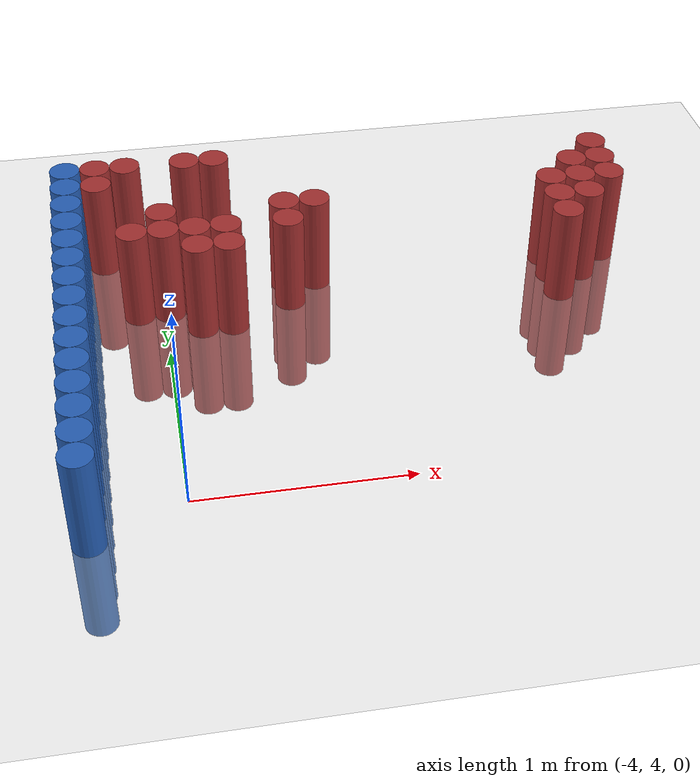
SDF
<sdf version="1.6">
 <world name="default">
  <model name="ground_plane">
   <static>1</static>
   <link name="link">
    <collision name="collision">
     <geometry><plane><normal>0 0 1</normal><size>100 100</size></plane></geometry>
     <surface><friction><ode><mu>100</mu><mu2>50</mu2></ode></friction></surface>
    </collision>
    <visual name="visual">
     <cast_shadows>0</cast_shadows>
     <geometry><plane><normal>0 0 1</normal><size>100 100</size></plane></geometry>
     <material>
      <script><uri>file://media/materials/scripts/gazebo.material</uri><name>Gazebo/Grey</name></script>
     </material>
    </visual>
   </link>
  </model>
  <model name="unit_cylinder_79">
   <static>1</static>
   <pose>-4.425000 3.825000 0.000000 0.000000 0.000000 0.000000</pose>
   <link name="link">
    <inertial>
     <mass>1</mass>
     <inertia><ixx>0.145833</ixx><ixy>0</ixy><ixz>0</ixz><iyy>0.145833</iyy><iyz>0</iyz><izz>0.125</izz></inertia>
    </inertial>
    <collision name="collision">
     <geometry><cylinder><radius>0.075000</radius><length>1</length></cylinder></geometry>
    </collision>
    <visual name="visual">
     <geometry><cylinder><radius>0.075000</radius><length>1</length></cylinder></geometry>
     <material>
      <ambient>0.152000 0.379000 0.720000 1</ambient>
      <diffuse>0.152000 0.379000 0.720000 1</diffuse>
     </material>
     <material>
      <script><name>Gazebo/Grey</name><uri>file://media/materials/scripts/gazebo.material</uri></script>
     </material>
    </visual>
    <sensor name="sensor_contact" type="contact"><contact><collision>collision</collision></contact></sensor>
   </link>
   <plugin filename="gz-sim-touchplugin-system" name="gz::sim::systems::TouchPlugin">
    <target>robot</target>
    <namespace>robot</namespace>
    <time>0.001</time>
    <enabled>true</enabled>
   </plugin>
  </model>
  <model name="unit_cylinder_81">
   <static>1</static>
   <pose>-4.425000 3.975000 0.000000 0.000000 0.000000 0.000000</pose>
   <link name="link">
    <inertial>
     <mass>1</mass>
     <inertia><ixx>0.145833</ixx><ixy>0</ixy><ixz>0</ixz><iyy>0.145833</iyy><iyz>0</iyz><izz>0.125</izz></inertia>
    </inertial>
    <collision name="collision">
     <geometry><cylinder><radius>0.075000</radius><length>1</length></cylinder></geometry>
    </collision>
    <visual name="visual">
     <geometry><cylinder><radius>0.075000</radius><length>1</length></cylinder></geometry>
     <material>
      <ambient>0.152000 0.379000 0.720000 1</ambient>
      <diffuse>0.152000 0.379000 0.720000 1</diffuse>
     </material>
     <material>
      <script><name>Gazebo/Grey</name><uri>file://media/materials/scripts/gazebo.material</uri></script>
     </material>
    </visual>
    <sensor name="sensor_contact" type="contact"><contact><collision>collision</collision></contact></sensor>
   </link>
   <plugin filename="gz-sim-touchplugin-system" name="gz::sim::systems::TouchPlugin">
    <target>robot</target>
    <namespace>robot</namespace>
    <time>0.001</time>
    <enabled>true</enabled>
   </plugin>
  </model>
  <model name="unit_cylinder_83">
   <static>1</static>
   <pose>-4.425000 4.125000 0.000000 0.000000 0.000000 0.000000</pose>
   <link name="link">
    <inertial>
     <mass>1</mass>
     <inertia><ixx>0.145833</ixx><ixy>0</ixy><ixz>0</ixz><iyy>0.145833</iyy><iyz>0</iyz><izz>0.125</izz></inertia>
    </inertial>
    <collision name="collision">
     <geometry><cylinder><radius>0.075000</radius><length>1</length></cylinder></geometry>
    </collision>
    <visual name="visual">
     <geometry><cylinder><radius>0.075000</radius><length>1</length></cylinder></geometry>
     <material>
      <ambient>0.152000 0.379000 0.720000 1</ambient>
      <diffuse>0.152000 0.379000 0.720000 1</diffuse>
     </material>
     <material>
      <script><name>Gazebo/Grey</name><uri>file://media/materials/scripts/gazebo.material</uri></script>
     </material>
    </visual>
    <sensor name="sensor_contact" type="contact"><contact><collision>collision</collision></contact></sensor>
   </link>
   <plugin filename="gz-sim-touchplugin-system" name="gz::sim::systems::TouchPlugin">
    <target>robot</target>
    <namespace>robot</namespace>
    <time>0.001</time>
    <enabled>true</enabled>
   </plugin>
  </model>
  <model name="unit_cylinder_85">
   <static>1</static>
   <pose>-4.425000 4.275000 0.000000 0.000000 0.000000 0.000000</pose>
   <link name="link">
    <inertial>
     <mass>1</mass>
     <inertia><ixx>0.145833</ixx><ixy>0</ixy><ixz>0</ixz><iyy>0.145833</iyy><iyz>0</iyz><izz>0.125</izz></inertia>
    </inertial>
    <collision name="collision">
     <geometry><cylinder><radius>0.075000</radius><length>1</length></cylinder></geometry>
    </collision>
    <visual name="visual">
     <geometry><cylinder><radius>0.075000</radius><length>1</length></cylinder></geometry>
     <material>
      <ambient>0.152000 0.379000 0.720000 1</ambient>
      <diffuse>0.152000 0.379000 0.720000 1</diffuse>
     </material>
     <material>
      <script><name>Gazebo/Grey</name><uri>file://media/materials/scripts/gazebo.material</uri></script>
     </material>
    </visual>
    <sensor name="sensor_contact" type="contact"><contact><collision>collision</collision></contact></sensor>
   </link>
   <plugin filename="gz-sim-touchplugin-system" name="gz::sim::systems::TouchPlugin">
    <target>robot</target>
    <namespace>robot</namespace>
    <time>0.001</time>
    <enabled>true</enabled>
   </plugin>
  </model>
  <model name="unit_cylinder_87">
   <static>1</static>
   <pose>-4.425000 4.425000 0.000000 0.000000 0.000000 0.000000</pose>
   <link name="link">
    <inertial>
     <mass>1</mass>
     <inertia><ixx>0.145833</ixx><ixy>0</ixy><ixz>0</ixz><iyy>0.145833</iyy><iyz>0</iyz><izz>0.125</izz></inertia>
    </inertial>
    <collision name="collision">
     <geometry><cylinder><radius>0.075000</radius><length>1</length></cylinder></geometry>
    </collision>
    <visual name="visual">
     <geometry><cylinder><radius>0.075000</radius><length>1</length></cylinder></geometry>
     <material>
      <ambient>0.152000 0.379000 0.720000 1</ambient>
      <diffuse>0.152000 0.379000 0.720000 1</diffuse>
     </material>
     <material>
      <script><name>Gazebo/Grey</name><uri>file://media/materials/scripts/gazebo.material</uri></script>
     </material>
    </visual>
    <sensor name="sensor_contact" type="contact"><contact><collision>collision</collision></contact></sensor>
   </link>
   <plugin filename="gz-sim-touchplugin-system" name="gz::sim::systems::TouchPlugin">
    <target>robot</target>
    <namespace>robot</namespace>
    <time>0.001</time>
    <enabled>true</enabled>
   </plugin>
  </model>
  <model name="unit_cylinder_89">
   <static>1</static>
   <pose>-4.425000 4.575000 0.000000 0.000000 0.000000 0.000000</pose>
   <link name="link">
    <inertial>
     <mass>1</mass>
     <inertia><ixx>0.145833</ixx><ixy>0</ixy><ixz>0</ixz><iyy>0.145833</iyy><iyz>0</iyz><izz>0.125</izz></inertia>
    </inertial>
    <collision name="collision">
     <geometry><cylinder><radius>0.075000</radius><length>1</length></cylinder></geometry>
    </collision>
    <visual name="visual">
     <geometry><cylinder><radius>0.075000</radius><length>1</length></cylinder></geometry>
     <material>
      <ambient>0.152000 0.379000 0.720000 1</ambient>
      <diffuse>0.152000 0.379000 0.720000 1</diffuse>
     </material>
     <material>
      <script><name>Gazebo/Grey</name><uri>file://media/materials/scripts/gazebo.material</uri></script>
     </material>
    </visual>
    <sensor name="sensor_contact" type="contact"><contact><collision>collision</collision></contact></sensor>
   </link>
   <plugin filename="gz-sim-touchplugin-system" name="gz::sim::systems::TouchPlugin">
    <target>robot</target>
    <namespace>robot</namespace>
    <time>0.001</time>
    <enabled>true</enabled>
   </plugin>
  </model>
  <model name="unit_cylinder_91">
   <static>1</static>
   <pose>-4.425000 4.725000 0.000000 0.000000 0.000000 0.000000</pose>
   <link name="link">
    <inertial>
     <mass>1</mass>
     <inertia><ixx>0.145833</ixx><ixy>0</ixy><ixz>0</ixz><iyy>0.145833</iyy><iyz>0</iyz><izz>0.125</izz></inertia>
    </inertial>
    <collision name="collision">
     <geometry><cylinder><radius>0.075000</radius><length>1</length></cylinder></geometry>
    </collision>
    <visual name="visual">
     <geometry><cylinder><radius>0.075000</radius><length>1</length></cylinder></geometry>
     <material>
      <ambient>0.152000 0.379000 0.720000 1</ambient>
      <diffuse>0.152000 0.379000 0.720000 1</diffuse>
     </material>
     <material>
      <script><name>Gazebo/Grey</name><uri>file://media/materials/scripts/gazebo.material</uri></script>
     </material>
    </visual>
    <sensor name="sensor_contact" type="contact"><contact><collision>collision</collision></contact></sensor>
   </link>
   <plugin filename="gz-sim-touchplugin-system" name="gz::sim::systems::TouchPlugin">
    <target>robot</target>
    <namespace>robot</namespace>
    <time>0.001</time>
    <enabled>true</enabled>
   </plugin>
  </model>
  <model name="unit_cylinder_93">
   <static>1</static>
   <pose>-4.425000 4.875000 0.000000 0.000000 0.000000 0.000000</pose>
   <link name="link">
    <inertial>
     <mass>1</mass>
     <inertia><ixx>0.145833</ixx><ixy>0</ixy><ixz>0</ixz><iyy>0.145833</iyy><iyz>0</iyz><izz>0.125</izz></inertia>
    </inertial>
    <collision name="collision">
     <geometry><cylinder><radius>0.075000</radius><length>1</length></cylinder></geometry>
    </collision>
    <visual name="visual">
     <geometry><cylinder><radius>0.075000</radius><length>1</length></cylinder></geometry>
     <material>
      <ambient>0.152000 0.379000 0.720000 1</ambient>
      <diffuse>0.152000 0.379000 0.720000 1</diffuse>
     </material>
     <material>
      <script><name>Gazebo/Grey</name><uri>file://media/materials/scripts/gazebo.material</uri></script>
     </material>
    </visual>
    <sensor name="sensor_contact" type="contact"><contact><collision>collision</collision></contact></sensor>
   </link>
   <plugin filename="gz-sim-touchplugin-system" name="gz::sim::systems::TouchPlugin">
    <target>robot</target>
    <namespace>robot</namespace>
    <time>0.001</time>
    <enabled>true</enabled>
   </plugin>
  </model>
  <model name="unit_cylinder_95">
   <static>1</static>
   <pose>-4.425000 5.025000 0.000000 0.000000 0.000000 0.000000</pose>
   <link name="link">
    <inertial>
     <mass>1</mass>
     <inertia><ixx>0.145833</ixx><ixy>0</ixy><ixz>0</ixz><iyy>0.145833</iyy><iyz>0</iyz><izz>0.125</izz></inertia>
    </inertial>
    <collision name="collision">
     <geometry><cylinder><radius>0.075000</radius><length>1</length></cylinder></geometry>
    </collision>
    <visual name="visual">
     <geometry><cylinder><radius>0.075000</radius><length>1</length></cylinder></geometry>
     <material>
      <ambient>0.152000 0.379000 0.720000 1</ambient>
      <diffuse>0.152000 0.379000 0.720000 1</diffuse>
     </material>
     <material>
      <script><name>Gazebo/Grey</name><uri>file://media/materials/scripts/gazebo.material</uri></script>
     </material>
    </visual>
    <sensor name="sensor_contact" type="contact"><contact><collision>collision</collision></contact></sensor>
   </link>
   <plugin filename="gz-sim-touchplugin-system" name="gz::sim::systems::TouchPlugin">
    <target>robot</target>
    <namespace>robot</namespace>
    <time>0.001</time>
    <enabled>true</enabled>
   </plugin>
  </model>
  <model name="unit_cylinder_96">
   <static>1</static>
   <pose>-4.425000 5.175000 0.000000 0.000000 0.000000 0.000000</pose>
   <link name="link">
    <inertial>
     <mass>1</mass>
     <inertia><ixx>0.145833</ixx><ixy>0</ixy><ixz>0</ixz><iyy>0.145833</iyy><iyz>0</iyz><izz>0.125</izz></inertia>
    </inertial>
    <collision name="collision">
     <geometry><cylinder><radius>0.075000</radius><length>1</length></cylinder></geometry>
    </collision>
    <visual name="visual">
     <geometry><cylinder><radius>0.075000</radius><length>1</length></cylinder></geometry>
     <material>
      <ambient>0.152000 0.379000 0.720000 1</ambient>
      <diffuse>0.152000 0.379000 0.720000 1</diffuse>
     </material>
     <material>
      <script><name>Gazebo/Grey</name><uri>file://media/materials/scripts/gazebo.material</uri></script>
     </material>
    </visual>
    <sensor name="sensor_contact" type="contact"><contact><collision>collision</collision></contact></sensor>
   </link>
   <plugin filename="gz-sim-touchplugin-system" name="gz::sim::systems::TouchPlugin">
    <target>robot</target>
    <namespace>robot</namespace>
    <time>0.001</time>
    <enabled>true</enabled>
   </plugin>
  </model>
  <model name="unit_cylinder_97">
   <static>1</static>
   <pose>-4.425000 5.325000 0.000000 0.000000 0.000000 0.000000</pose>
   <link name="link">
    <inertial>
     <mass>1</mass>
     <inertia><ixx>0.145833</ixx><ixy>0</ixy><ixz>0</ixz><iyy>0.145833</iyy><iyz>0</iyz><izz>0.125</izz></inertia>
    </inertial>
    <collision name="collision">
     <geometry><cylinder><radius>0.075000</radius><length>1</length></cylinder></geometry>
    </collision>
    <visual name="visual">
     <geometry><cylinder><radius>0.075000</radius><length>1</length></cylinder></geometry>
     <material>
      <ambient>0.152000 0.379000 0.720000 1</ambient>
      <diffuse>0.152000 0.379000 0.720000 1</diffuse>
     </material>
     <material>
      <script><name>Gazebo/Grey</name><uri>file://media/materials/scripts/gazebo.material</uri></script>
     </material>
    </visual>
    <sensor name="sensor_contact" type="contact"><contact><collision>collision</collision></contact></sensor>
   </link>
   <plugin filename="gz-sim-touchplugin-system" name="gz::sim::systems::TouchPlugin">
    <target>robot</target>
    <namespace>robot</namespace>
    <time>0.001</time>
    <enabled>true</enabled>
   </plugin>
  </model>
  <model name="unit_cylinder_98">
   <static>1</static>
   <pose>-4.425000 5.475000 0.000000 0.000000 0.000000 0.000000</pose>
   <link name="link">
    <inertial>
     <mass>1</mass>
     <inertia><ixx>0.145833</ixx><ixy>0</ixy><ixz>0</ixz><iyy>0.145833</iyy><iyz>0</iyz><izz>0.125</izz></inertia>
    </inertial>
    <collision name="collision">
     <geometry><cylinder><radius>0.075000</radius><length>1</length></cylinder></geometry>
    </collision>
    <visual name="visual">
     <geometry><cylinder><radius>0.075000</radius><length>1</length></cylinder></geometry>
     <material>
      <ambient>0.152000 0.379000 0.720000 1</ambient>
      <diffuse>0.152000 0.379000 0.720000 1</diffuse>
     </material>
     <material>
      <script><name>Gazebo/Grey</name><uri>file://media/materials/scripts/gazebo.material</uri></script>
     </material>
    </visual>
    <sensor name="sensor_contact" type="contact"><contact><collision>collision</collision></contact></sensor>
   </link>
   <plugin filename="gz-sim-touchplugin-system" name="gz::sim::systems::TouchPlugin">
    <target>robot</target>
    <namespace>robot</namespace>
    <time>0.001</time>
    <enabled>true</enabled>
   </plugin>
  </model>
  <model name="unit_cylinder_99">
   <static>1</static>
   <pose>-4.425000 5.625000 0.000000 0.000000 0.000000 0.000000</pose>
   <link name="link">
    <inertial>
     <mass>1</mass>
     <inertia><ixx>0.145833</ixx><ixy>0</ixy><ixz>0</ixz><iyy>0.145833</iyy><iyz>0</iyz><izz>0.125</izz></inertia>
    </inertial>
    <collision name="collision">
     <geometry><cylinder><radius>0.075000</radius><length>1</length></cylinder></geometry>
    </collision>
    <visual name="visual">
     <geometry><cylinder><radius>0.075000</radius><length>1</length></cylinder></geometry>
     <material>
      <ambient>0.152000 0.379000 0.720000 1</ambient>
      <diffuse>0.152000 0.379000 0.720000 1</diffuse>
     </material>
     <material>
      <script><name>Gazebo/Grey</name><uri>file://media/materials/scripts/gazebo.material</uri></script>
     </material>
    </visual>
    <sensor name="sensor_contact" type="contact"><contact><collision>collision</collision></contact></sensor>
   </link>
   <plugin filename="gz-sim-touchplugin-system" name="gz::sim::systems::TouchPlugin">
    <target>robot</target>
    <namespace>robot</namespace>
    <time>0.001</time>
    <enabled>true</enabled>
   </plugin>
  </model>
  <model name="unit_cylinder_100">
   <static>1</static>
   <pose>-4.425000 5.775000 0.000000 0.000000 0.000000 0.000000</pose>
   <link name="link">
    <inertial>
     <mass>1</mass>
     <inertia><ixx>0.145833</ixx><ixy>0</ixy><ixz>0</ixz><iyy>0.145833</iyy><iyz>0</iyz><izz>0.125</izz></inertia>
    </inertial>
    <collision name="collision">
     <geometry><cylinder><radius>0.075000</radius><length>1</length></cylinder></geometry>
    </collision>
    <visual name="visual">
     <geometry><cylinder><radius>0.075000</radius><length>1</length></cylinder></geometry>
     <material>
      <ambient>0.152000 0.379000 0.720000 1</ambient>
      <diffuse>0.152000 0.379000 0.720000 1</diffuse>
     </material>
     <material>
      <script><name>Gazebo/Grey</name><uri>file://media/materials/scripts/gazebo.material</uri></script>
     </material>
    </visual>
    <sensor name="sensor_contact" type="contact"><contact><collision>collision</collision></contact></sensor>
   </link>
   <plugin filename="gz-sim-touchplugin-system" name="gz::sim::systems::TouchPlugin">
    <target>robot</target>
    <namespace>robot</namespace>
    <time>0.001</time>
    <enabled>true</enabled>
   </plugin>
  </model>
  <model name="unit_cylinder_101">
   <static>1</static>
   <pose>-4.425000 5.925000 0.000000 0.000000 0.000000 0.000000</pose>
   <link name="link">
    <inertial>
     <mass>1</mass>
     <inertia><ixx>0.145833</ixx><ixy>0</ixy><ixz>0</ixz><iyy>0.145833</iyy><iyz>0</iyz><izz>0.125</izz></inertia>
    </inertial>
    <collision name="collision">
     <geometry><cylinder><radius>0.075000</radius><length>1</length></cylinder></geometry>
    </collision>
    <visual name="visual">
     <geometry><cylinder><radius>0.075000</radius><length>1</length></cylinder></geometry>
     <material>
      <ambient>0.152000 0.379000 0.720000 1</ambient>
      <diffuse>0.152000 0.379000 0.720000 1</diffuse>
     </material>
     <material>
      <script><name>Gazebo/Grey</name><uri>file://media/materials/scripts/gazebo.material</uri></script>
     </material>
    </visual>
    <sensor name="sensor_contact" type="contact"><contact><collision>collision</collision></contact></sensor>
   </link>
   <plugin filename="gz-sim-touchplugin-system" name="gz::sim::systems::TouchPlugin">
    <target>robot</target>
    <namespace>robot</namespace>
    <time>0.001</time>
    <enabled>true</enabled>
   </plugin>
  </model>
  <model name="unit_cylinder_126">
   <static>1</static>
   <pose>-4.275000 5.775000 0.000000 0.000000 0.000000 0.000000</pose>
   <link name="link">
    <inertial>
     <mass>1</mass>
     <inertia><ixx>0.145833</ixx><ixy>0</ixy><ixz>0</ixz><iyy>0.145833</iyy><iyz>0</iyz><izz>0.125</izz></inertia>
    </inertial>
    <collision name="collision">
     <geometry><cylinder><radius>0.075000</radius><length>1</length></cylinder></geometry>
    </collision>
    <visual name="visual">
     <geometry><cylinder><radius>0.075000</radius><length>1</length></cylinder></geometry>
     <material>
      <ambient>0.648000 0.192000 0.192000 1</ambient>
      <diffuse>0.648000 0.192000 0.192000 1</diffuse>
     </material>
     <material>
      <script><name>Gazebo/Grey</name><uri>file://media/materials/scripts/gazebo.material</uri></script>
     </material>
    </visual>
    <sensor name="sensor_contact" type="contact"><contact><collision>collision</collision></contact></sensor>
   </link>
   <plugin filename="gz-sim-touchplugin-system" name="gz::sim::systems::TouchPlugin">
    <target>robot</target>
    <namespace>robot</namespace>
    <time>0.001</time>
    <enabled>true</enabled>
   </plugin>
  </model>
  <model name="unit_cylinder_127">
   <static>1</static>
   <pose>-4.275000 5.925000 0.000000 0.000000 0.000000 0.000000</pose>
   <link name="link">
    <inertial>
     <mass>1</mass>
     <inertia><ixx>0.145833</ixx><ixy>0</ixy><ixz>0</ixz><iyy>0.145833</iyy><iyz>0</iyz><izz>0.125</izz></inertia>
    </inertial>
    <collision name="collision">
     <geometry><cylinder><radius>0.075000</radius><length>1</length></cylinder></geometry>
    </collision>
    <visual name="visual">
     <geometry><cylinder><radius>0.075000</radius><length>1</length></cylinder></geometry>
     <material>
      <ambient>0.648000 0.192000 0.192000 1</ambient>
      <diffuse>0.648000 0.192000 0.192000 1</diffuse>
     </material>
     <material>
      <script><name>Gazebo/Grey</name><uri>file://media/materials/scripts/gazebo.material</uri></script>
     </material>
    </visual>
    <sensor name="sensor_contact" type="contact"><contact><collision>collision</collision></contact></sensor>
   </link>
   <plugin filename="gz-sim-touchplugin-system" name="gz::sim::systems::TouchPlugin">
    <target>robot</target>
    <namespace>robot</namespace>
    <time>0.001</time>
    <enabled>true</enabled>
   </plugin>
  </model>
  <model name="unit_cylinder_142">
   <static>1</static>
   <pose>-4.125000 5.325000 0.000000 0.000000 0.000000 0.000000</pose>
   <link name="link">
    <inertial>
     <mass>1</mass>
     <inertia><ixx>0.145833</ixx><ixy>0</ixy><ixz>0</ixz><iyy>0.145833</iyy><iyz>0</iyz><izz>0.125</izz></inertia>
    </inertial>
    <collision name="collision">
     <geometry><cylinder><radius>0.075000</radius><length>1</length></cylinder></geometry>
    </collision>
    <visual name="visual">
     <geometry><cylinder><radius>0.075000</radius><length>1</length></cylinder></geometry>
     <material>
      <ambient>0.648000 0.192000 0.192000 1</ambient>
      <diffuse>0.648000 0.192000 0.192000 1</diffuse>
     </material>
     <material>
      <script><name>Gazebo/Grey</name><uri>file://media/materials/scripts/gazebo.material</uri></script>
     </material>
    </visual>
    <sensor name="sensor_contact" type="contact"><contact><collision>collision</collision></contact></sensor>
   </link>
   <plugin filename="gz-sim-touchplugin-system" name="gz::sim::systems::TouchPlugin">
    <target>robot</target>
    <namespace>robot</namespace>
    <time>0.001</time>
    <enabled>true</enabled>
   </plugin>
  </model>
  <model name="unit_cylinder_143">
   <static>1</static>
   <pose>-4.125000 5.925000 0.000000 0.000000 0.000000 0.000000</pose>
   <link name="link">
    <inertial>
     <mass>1</mass>
     <inertia><ixx>0.145833</ixx><ixy>0</ixy><ixz>0</ixz><iyy>0.145833</iyy><iyz>0</iyz><izz>0.125</izz></inertia>
    </inertial>
    <collision name="collision">
     <geometry><cylinder><radius>0.075000</radius><length>1</length></cylinder></geometry>
    </collision>
    <visual name="visual">
     <geometry><cylinder><radius>0.075000</radius><length>1</length></cylinder></geometry>
     <material>
      <ambient>0.648000 0.192000 0.192000 1</ambient>
      <diffuse>0.648000 0.192000 0.192000 1</diffuse>
     </material>
     <material>
      <script><name>Gazebo/Grey</name><uri>file://media/materials/scripts/gazebo.material</uri></script>
     </material>
    </visual>
    <sensor name="sensor_contact" type="contact"><contact><collision>collision</collision></contact></sensor>
   </link>
   <plugin filename="gz-sim-touchplugin-system" name="gz::sim::systems::TouchPlugin">
    <target>robot</target>
    <namespace>robot</namespace>
    <time>0.001</time>
    <enabled>true</enabled>
   </plugin>
  </model>
  <model name="unit_cylinder_152">
   <static>1</static>
   <pose>-3.975000 5.325000 0.000000 0.000000 0.000000 0.000000</pose>
   <link name="link">
    <inertial>
     <mass>1</mass>
     <inertia><ixx>0.145833</ixx><ixy>0</ixy><ixz>0</ixz><iyy>0.145833</iyy><iyz>0</iyz><izz>0.125</izz></inertia>
    </inertial>
    <collision name="collision">
     <geometry><cylinder><radius>0.075000</radius><length>1</length></cylinder></geometry>
    </collision>
    <visual name="visual">
     <geometry><cylinder><radius>0.075000</radius><length>1</length></cylinder></geometry>
     <material>
      <ambient>0.648000 0.192000 0.192000 1</ambient>
      <diffuse>0.648000 0.192000 0.192000 1</diffuse>
     </material>
     <material>
      <script><name>Gazebo/Grey</name><uri>file://media/materials/scripts/gazebo.material</uri></script>
     </material>
    </visual>
    <sensor name="sensor_contact" type="contact"><contact><collision>collision</collision></contact></sensor>
   </link>
   <plugin filename="gz-sim-touchplugin-system" name="gz::sim::systems::TouchPlugin">
    <target>robot</target>
    <namespace>robot</namespace>
    <time>0.001</time>
    <enabled>true</enabled>
   </plugin>
  </model>
  <model name="unit_cylinder_153">
   <static>1</static>
   <pose>-3.975000 5.475000 0.000000 0.000000 0.000000 0.000000</pose>
   <link name="link">
    <inertial>
     <mass>1</mass>
     <inertia><ixx>0.145833</ixx><ixy>0</ixy><ixz>0</ixz><iyy>0.145833</iyy><iyz>0</iyz><izz>0.125</izz></inertia>
    </inertial>
    <collision name="collision">
     <geometry><cylinder><radius>0.075000</radius><length>1</length></cylinder></geometry>
    </collision>
    <visual name="visual">
     <geometry><cylinder><radius>0.075000</radius><length>1</length></cylinder></geometry>
     <material>
      <ambient>0.648000 0.192000 0.192000 1</ambient>
      <diffuse>0.648000 0.192000 0.192000 1</diffuse>
     </material>
     <material>
      <script><name>Gazebo/Grey</name><uri>file://media/materials/scripts/gazebo.material</uri></script>
     </material>
    </visual>
    <sensor name="sensor_contact" type="contact"><contact><collision>collision</collision></contact></sensor>
   </link>
   <plugin filename="gz-sim-touchplugin-system" name="gz::sim::systems::TouchPlugin">
    <target>robot</target>
    <namespace>robot</namespace>
    <time>0.001</time>
    <enabled>true</enabled>
   </plugin>
  </model>
  <model name="unit_cylinder_158">
   <static>1</static>
   <pose>-3.825000 5.175000 0.000000 0.000000 0.000000 0.000000</pose>
   <link name="link">
    <inertial>
     <mass>1</mass>
     <inertia><ixx>0.145833</ixx><ixy>0</ixy><ixz>0</ixz><iyy>0.145833</iyy><iyz>0</iyz><izz>0.125</izz></inertia>
    </inertial>
    <collision name="collision">
     <geometry><cylinder><radius>0.075000</radius><length>1</length></cylinder></geometry>
    </collision>
    <visual name="visual">
     <geometry><cylinder><radius>0.075000</radius><length>1</length></cylinder></geometry>
     <material>
      <ambient>0.648000 0.192000 0.192000 1</ambient>
      <diffuse>0.648000 0.192000 0.192000 1</diffuse>
     </material>
     <material>
      <script><name>Gazebo/Grey</name><uri>file://media/materials/scripts/gazebo.material</uri></script>
     </material>
    </visual>
    <sensor name="sensor_contact" type="contact"><contact><collision>collision</collision></contact></sensor>
   </link>
   <plugin filename="gz-sim-touchplugin-system" name="gz::sim::systems::TouchPlugin">
    <target>robot</target>
    <namespace>robot</namespace>
    <time>0.001</time>
    <enabled>true</enabled>
   </plugin>
  </model>
  <model name="unit_cylinder_159">
   <static>1</static>
   <pose>-3.825000 5.325000 0.000000 0.000000 0.000000 0.000000</pose>
   <link name="link">
    <inertial>
     <mass>1</mass>
     <inertia><ixx>0.145833</ixx><ixy>0</ixy><ixz>0</ixz><iyy>0.145833</iyy><iyz>0</iyz><izz>0.125</izz></inertia>
    </inertial>
    <collision name="collision">
     <geometry><cylinder><radius>0.075000</radius><length>1</length></cylinder></geometry>
    </collision>
    <visual name="visual">
     <geometry><cylinder><radius>0.075000</radius><length>1</length></cylinder></geometry>
     <material>
      <ambient>0.648000 0.192000 0.192000 1</ambient>
      <diffuse>0.648000 0.192000 0.192000 1</diffuse>
     </material>
     <material>
      <script><name>Gazebo/Grey</name><uri>file://media/materials/scripts/gazebo.material</uri></script>
     </material>
    </visual>
    <sensor name="sensor_contact" type="contact"><contact><collision>collision</collision></contact></sensor>
   </link>
   <plugin filename="gz-sim-touchplugin-system" name="gz::sim::systems::TouchPlugin">
    <target>robot</target>
    <namespace>robot</namespace>
    <time>0.001</time>
    <enabled>true</enabled>
   </plugin>
  </model>
  <model name="unit_cylinder_160">
   <static>1</static>
   <pose>-3.825000 5.925000 0.000000 0.000000 0.000000 0.000000</pose>
   <link name="link">
    <inertial>
     <mass>1</mass>
     <inertia><ixx>0.145833</ixx><ixy>0</ixy><ixz>0</ixz><iyy>0.145833</iyy><iyz>0</iyz><izz>0.125</izz></inertia>
    </inertial>
    <collision name="collision">
     <geometry><cylinder><radius>0.075000</radius><length>1</length></cylinder></geometry>
    </collision>
    <visual name="visual">
     <geometry><cylinder><radius>0.075000</radius><length>1</length></cylinder></geometry>
     <material>
      <ambient>0.648000 0.192000 0.192000 1</ambient>
      <diffuse>0.648000 0.192000 0.192000 1</diffuse>
     </material>
     <material>
      <script><name>Gazebo/Grey</name><uri>file://media/materials/scripts/gazebo.material</uri></script>
     </material>
    </visual>
    <sensor name="sensor_contact" type="contact"><contact><collision>collision</collision></contact></sensor>
   </link>
   <plugin filename="gz-sim-touchplugin-system" name="gz::sim::systems::TouchPlugin">
    <target>robot</target>
    <namespace>robot</namespace>
    <time>0.001</time>
    <enabled>true</enabled>
   </plugin>
  </model>
  <model name="unit_cylinder_164">
   <static>1</static>
   <pose>-3.675000 5.175000 0.000000 0.000000 0.000000 0.000000</pose>
   <link name="link">
    <inertial>
     <mass>1</mass>
     <inertia><ixx>0.145833</ixx><ixy>0</ixy><ixz>0</ixz><iyy>0.145833</iyy><iyz>0</iyz><izz>0.125</izz></inertia>
    </inertial>
    <collision name="collision">
     <geometry><cylinder><radius>0.075000</radius><length>1</length></cylinder></geometry>
    </collision>
    <visual name="visual">
     <geometry><cylinder><radius>0.075000</radius><length>1</length></cylinder></geometry>
     <material>
      <ambient>0.648000 0.192000 0.192000 1</ambient>
      <diffuse>0.648000 0.192000 0.192000 1</diffuse>
     </material>
     <material>
      <script><name>Gazebo/Grey</name><uri>file://media/materials/scripts/gazebo.material</uri></script>
     </material>
    </visual>
    <sensor name="sensor_contact" type="contact"><contact><collision>collision</collision></contact></sensor>
   </link>
   <plugin filename="gz-sim-touchplugin-system" name="gz::sim::systems::TouchPlugin">
    <target>robot</target>
    <namespace>robot</namespace>
    <time>0.001</time>
    <enabled>true</enabled>
   </plugin>
  </model>
  <model name="unit_cylinder_165">
   <static>1</static>
   <pose>-3.675000 5.325000 0.000000 0.000000 0.000000 0.000000</pose>
   <link name="link">
    <inertial>
     <mass>1</mass>
     <inertia><ixx>0.145833</ixx><ixy>0</ixy><ixz>0</ixz><iyy>0.145833</iyy><iyz>0</iyz><izz>0.125</izz></inertia>
    </inertial>
    <collision name="collision">
     <geometry><cylinder><radius>0.075000</radius><length>1</length></cylinder></geometry>
    </collision>
    <visual name="visual">
     <geometry><cylinder><radius>0.075000</radius><length>1</length></cylinder></geometry>
     <material>
      <ambient>0.648000 0.192000 0.192000 1</ambient>
      <diffuse>0.648000 0.192000 0.192000 1</diffuse>
     </material>
     <material>
      <script><name>Gazebo/Grey</name><uri>file://media/materials/scripts/gazebo.material</uri></script>
     </material>
    </visual>
    <sensor name="sensor_contact" type="contact"><contact><collision>collision</collision></contact></sensor>
   </link>
   <plugin filename="gz-sim-touchplugin-system" name="gz::sim::systems::TouchPlugin">
    <target>robot</target>
    <namespace>robot</namespace>
    <time>0.001</time>
    <enabled>true</enabled>
   </plugin>
  </model>
  <model name="unit_cylinder_166">
   <static>1</static>
   <pose>-3.675000 5.925000 0.000000 0.000000 0.000000 0.000000</pose>
   <link name="link">
    <inertial>
     <mass>1</mass>
     <inertia><ixx>0.145833</ixx><ixy>0</ixy><ixz>0</ixz><iyy>0.145833</iyy><iyz>0</iyz><izz>0.125</izz></inertia>
    </inertial>
    <collision name="collision">
     <geometry><cylinder><radius>0.075000</radius><length>1</length></cylinder></geometry>
    </collision>
    <visual name="visual">
     <geometry><cylinder><radius>0.075000</radius><length>1</length></cylinder></geometry>
     <material>
      <ambient>0.648000 0.192000 0.192000 1</ambient>
      <diffuse>0.648000 0.192000 0.192000 1</diffuse>
     </material>
     <material>
      <script><name>Gazebo/Grey</name><uri>file://media/materials/scripts/gazebo.material</uri></script>
     </material>
    </visual>
    <sensor name="sensor_contact" type="contact"><contact><collision>collision</collision></contact></sensor>
   </link>
   <plugin filename="gz-sim-touchplugin-system" name="gz::sim::systems::TouchPlugin">
    <target>robot</target>
    <namespace>robot</namespace>
    <time>0.001</time>
    <enabled>true</enabled>
   </plugin>
  </model>
  <model name="unit_cylinder_171">
   <static>1</static>
   <pose>-3.375000 5.325000 0.000000 0.000000 0.000000 0.000000</pose>
   <link name="link">
    <inertial>
     <mass>1</mass>
     <inertia><ixx>0.145833</ixx><ixy>0</ixy><ixz>0</ixz><iyy>0.145833</iyy><iyz>0</iyz><izz>0.125</izz></inertia>
    </inertial>
    <collision name="collision">
     <geometry><cylinder><radius>0.075000</radius><length>1</length></cylinder></geometry>
    </collision>
    <visual name="visual">
     <geometry><cylinder><radius>0.075000</radius><length>1</length></cylinder></geometry>
     <material>
      <ambient>0.648000 0.192000 0.192000 1</ambient>
      <diffuse>0.648000 0.192000 0.192000 1</diffuse>
     </material>
     <material>
      <script><name>Gazebo/Grey</name><uri>file://media/materials/scripts/gazebo.material</uri></script>
     </material>
    </visual>
    <sensor name="sensor_contact" type="contact"><contact><collision>collision</collision></contact></sensor>
   </link>
   <plugin filename="gz-sim-touchplugin-system" name="gz::sim::systems::TouchPlugin">
    <target>robot</target>
    <namespace>robot</namespace>
    <time>0.001</time>
    <enabled>true</enabled>
   </plugin>
  </model>
  <model name="unit_cylinder_172">
   <static>1</static>
   <pose>-3.375000 5.475000 0.000000 0.000000 0.000000 0.000000</pose>
   <link name="link">
    <inertial>
     <mass>1</mass>
     <inertia><ixx>0.145833</ixx><ixy>0</ixy><ixz>0</ixz><iyy>0.145833</iyy><iyz>0</iyz><izz>0.125</izz></inertia>
    </inertial>
    <collision name="collision">
     <geometry><cylinder><radius>0.075000</radius><length>1</length></cylinder></geometry>
    </collision>
    <visual name="visual">
     <geometry><cylinder><radius>0.075000</radius><length>1</length></cylinder></geometry>
     <material>
      <ambient>0.648000 0.192000 0.192000 1</ambient>
      <diffuse>0.648000 0.192000 0.192000 1</diffuse>
     </material>
     <material>
      <script><name>Gazebo/Grey</name><uri>file://media/materials/scripts/gazebo.material</uri></script>
     </material>
    </visual>
    <sensor name="sensor_contact" type="contact"><contact><collision>collision</collision></contact></sensor>
   </link>
   <plugin filename="gz-sim-touchplugin-system" name="gz::sim::systems::TouchPlugin">
    <target>robot</target>
    <namespace>robot</namespace>
    <time>0.001</time>
    <enabled>true</enabled>
   </plugin>
  </model>
  <model name="unit_cylinder_173">
   <static>1</static>
   <pose>-3.225000 5.475000 0.000000 0.000000 0.000000 0.000000</pose>
   <link name="link">
    <inertial>
     <mass>1</mass>
     <inertia><ixx>0.145833</ixx><ixy>0</ixy><ixz>0</ixz><iyy>0.145833</iyy><iyz>0</iyz><izz>0.125</izz></inertia>
    </inertial>
    <collision name="collision">
     <geometry><cylinder><radius>0.075000</radius><length>1</length></cylinder></geometry>
    </collision>
    <visual name="visual">
     <geometry><cylinder><radius>0.075000</radius><length>1</length></cylinder></geometry>
     <material>
      <ambient>0.648000 0.192000 0.192000 1</ambient>
      <diffuse>0.648000 0.192000 0.192000 1</diffuse>
     </material>
     <material>
      <script><name>Gazebo/Grey</name><uri>file://media/materials/scripts/gazebo.material</uri></script>
     </material>
    </visual>
    <sensor name="sensor_contact" type="contact"><contact><collision>collision</collision></contact></sensor>
   </link>
   <plugin filename="gz-sim-touchplugin-system" name="gz::sim::systems::TouchPlugin">
    <target>robot</target>
    <namespace>robot</namespace>
    <time>0.001</time>
    <enabled>true</enabled>
   </plugin>
  </model>
  <model name="unit_cylinder_208">
   <static>1</static>
   <pose>-2.025000 5.175000 0.000000 0.000000 0.000000 0.000000</pose>
   <link name="link">
    <inertial>
     <mass>1</mass>
     <inertia><ixx>0.145833</ixx><ixy>0</ixy><ixz>0</ixz><iyy>0.145833</iyy><iyz>0</iyz><izz>0.125</izz></inertia>
    </inertial>
    <collision name="collision">
     <geometry><cylinder><radius>0.075000</radius><length>1</length></cylinder></geometry>
    </collision>
    <visual name="visual">
     <geometry><cylinder><radius>0.075000</radius><length>1</length></cylinder></geometry>
     <material>
      <ambient>0.648000 0.192000 0.192000 1</ambient>
      <diffuse>0.648000 0.192000 0.192000 1</diffuse>
     </material>
     <material>
      <script><name>Gazebo/Grey</name><uri>file://media/materials/scripts/gazebo.material</uri></script>
     </material>
    </visual>
    <sensor name="sensor_contact" type="contact"><contact><collision>collision</collision></contact></sensor>
   </link>
   <plugin filename="gz-sim-touchplugin-system" name="gz::sim::systems::TouchPlugin">
    <target>robot</target>
    <namespace>robot</namespace>
    <time>0.001</time>
    <enabled>true</enabled>
   </plugin>
  </model>
  <model name="unit_cylinder_209">
   <static>1</static>
   <pose>-2.025000 5.325000 0.000000 0.000000 0.000000 0.000000</pose>
   <link name="link">
    <inertial>
     <mass>1</mass>
     <inertia><ixx>0.145833</ixx><ixy>0</ixy><ixz>0</ixz><iyy>0.145833</iyy><iyz>0</iyz><izz>0.125</izz></inertia>
    </inertial>
    <collision name="collision">
     <geometry><cylinder><radius>0.075000</radius><length>1</length></cylinder></geometry>
    </collision>
    <visual name="visual">
     <geometry><cylinder><radius>0.075000</radius><length>1</length></cylinder></geometry>
     <material>
      <ambient>0.648000 0.192000 0.192000 1</ambient>
      <diffuse>0.648000 0.192000 0.192000 1</diffuse>
     </material>
     <material>
      <script><name>Gazebo/Grey</name><uri>file://media/materials/scripts/gazebo.material</uri></script>
     </material>
    </visual>
    <sensor name="sensor_contact" type="contact"><contact><collision>collision</collision></contact></sensor>
   </link>
   <plugin filename="gz-sim-touchplugin-system" name="gz::sim::systems::TouchPlugin">
    <target>robot</target>
    <namespace>robot</namespace>
    <time>0.001</time>
    <enabled>true</enabled>
   </plugin>
  </model>
  <model name="unit_cylinder_210">
   <static>1</static>
   <pose>-2.025000 5.475000 0.000000 0.000000 0.000000 0.000000</pose>
   <link name="link">
    <inertial>
     <mass>1</mass>
     <inertia><ixx>0.145833</ixx><ixy>0</ixy><ixz>0</ixz><iyy>0.145833</iyy><iyz>0</iyz><izz>0.125</izz></inertia>
    </inertial>
    <collision name="collision">
     <geometry><cylinder><radius>0.075000</radius><length>1</length></cylinder></geometry>
    </collision>
    <visual name="visual">
     <geometry><cylinder><radius>0.075000</radius><length>1</length></cylinder></geometry>
     <material>
      <ambient>0.648000 0.192000 0.192000 1</ambient>
      <diffuse>0.648000 0.192000 0.192000 1</diffuse>
     </material>
     <material>
      <script><name>Gazebo/Grey</name><uri>file://media/materials/scripts/gazebo.material</uri></script>
     </material>
    </visual>
    <sensor name="sensor_contact" type="contact"><contact><collision>collision</collision></contact></sensor>
   </link>
   <plugin filename="gz-sim-touchplugin-system" name="gz::sim::systems::TouchPlugin">
    <target>robot</target>
    <namespace>robot</namespace>
    <time>0.001</time>
    <enabled>true</enabled>
   </plugin>
  </model>
  <model name="unit_cylinder_220">
   <static>1</static>
   <pose>-1.875000 5.325000 0.000000 0.000000 0.000000 0.000000</pose>
   <link name="link">
    <inertial>
     <mass>1</mass>
     <inertia><ixx>0.145833</ixx><ixy>0</ixy><ixz>0</ixz><iyy>0.145833</iyy><iyz>0</iyz><izz>0.125</izz></inertia>
    </inertial>
    <collision name="collision">
     <geometry><cylinder><radius>0.075000</radius><length>1</length></cylinder></geometry>
    </collision>
    <visual name="visual">
     <geometry><cylinder><radius>0.075000</radius><length>1</length></cylinder></geometry>
     <material>
      <ambient>0.648000 0.192000 0.192000 1</ambient>
      <diffuse>0.648000 0.192000 0.192000 1</diffuse>
     </material>
     <material>
      <script><name>Gazebo/Grey</name><uri>file://media/materials/scripts/gazebo.material</uri></script>
     </material>
    </visual>
    <sensor name="sensor_contact" type="contact"><contact><collision>collision</collision></contact></sensor>
   </link>
   <plugin filename="gz-sim-touchplugin-system" name="gz::sim::systems::TouchPlugin">
    <target>robot</target>
    <namespace>robot</namespace>
    <time>0.001</time>
    <enabled>true</enabled>
   </plugin>
  </model>
  <model name="unit_cylinder_221">
   <static>1</static>
   <pose>-1.875000 5.475000 0.000000 0.000000 0.000000 0.000000</pose>
   <link name="link">
    <inertial>
     <mass>1</mass>
     <inertia><ixx>0.145833</ixx><ixy>0</ixy><ixz>0</ixz><iyy>0.145833</iyy><iyz>0</iyz><izz>0.125</izz></inertia>
    </inertial>
    <collision name="collision">
     <geometry><cylinder><radius>0.075000</radius><length>1</length></cylinder></geometry>
    </collision>
    <visual name="visual">
     <geometry><cylinder><radius>0.075000</radius><length>1</length></cylinder></geometry>
     <material>
      <ambient>0.648000 0.192000 0.192000 1</ambient>
      <diffuse>0.648000 0.192000 0.192000 1</diffuse>
     </material>
     <material>
      <script><name>Gazebo/Grey</name><uri>file://media/materials/scripts/gazebo.material</uri></script>
     </material>
    </visual>
    <sensor name="sensor_contact" type="contact"><contact><collision>collision</collision></contact></sensor>
   </link>
   <plugin filename="gz-sim-touchplugin-system" name="gz::sim::systems::TouchPlugin">
    <target>robot</target>
    <namespace>robot</namespace>
    <time>0.001</time>
    <enabled>true</enabled>
   </plugin>
  </model>
  <model name="unit_cylinder_222">
   <static>1</static>
   <pose>-1.875000 5.625000 0.000000 0.000000 0.000000 0.000000</pose>
   <link name="link">
    <inertial>
     <mass>1</mass>
     <inertia><ixx>0.145833</ixx><ixy>0</ixy><ixz>0</ixz><iyy>0.145833</iyy><iyz>0</iyz><izz>0.125</izz></inertia>
    </inertial>
    <collision name="collision">
     <geometry><cylinder><radius>0.075000</radius><length>1</length></cylinder></geometry>
    </collision>
    <visual name="visual">
     <geometry><cylinder><radius>0.075000</radius><length>1</length></cylinder></geometry>
     <material>
      <ambient>0.648000 0.192000 0.192000 1</ambient>
      <diffuse>0.648000 0.192000 0.192000 1</diffuse>
     </material>
     <material>
      <script><name>Gazebo/Grey</name><uri>file://media/materials/scripts/gazebo.material</uri></script>
     </material>
    </visual>
    <sensor name="sensor_contact" type="contact"><contact><collision>collision</collision></contact></sensor>
   </link>
   <plugin filename="gz-sim-touchplugin-system" name="gz::sim::systems::TouchPlugin">
    <target>robot</target>
    <namespace>robot</namespace>
    <time>0.001</time>
    <enabled>true</enabled>
   </plugin>
  </model>
  <model name="unit_cylinder_228">
   <static>1</static>
   <pose>-1.725000 5.475000 0.000000 0.000000 0.000000 0.000000</pose>
   <link name="link">
    <inertial>
     <mass>1</mass>
     <inertia><ixx>0.145833</ixx><ixy>0</ixy><ixz>0</ixz><iyy>0.145833</iyy><iyz>0</iyz><izz>0.125</izz></inertia>
    </inertial>
    <collision name="collision">
     <geometry><cylinder><radius>0.075000</radius><length>1</length></cylinder></geometry>
    </collision>
    <visual name="visual">
     <geometry><cylinder><radius>0.075000</radius><length>1</length></cylinder></geometry>
     <material>
      <ambient>0.648000 0.192000 0.192000 1</ambient>
      <diffuse>0.648000 0.192000 0.192000 1</diffuse>
     </material>
     <material>
      <script><name>Gazebo/Grey</name><uri>file://media/materials/scripts/gazebo.material</uri></script>
     </material>
    </visual>
    <sensor name="sensor_contact" type="contact"><contact><collision>collision</collision></contact></sensor>
   </link>
   <plugin filename="gz-sim-touchplugin-system" name="gz::sim::systems::TouchPlugin">
    <target>robot</target>
    <namespace>robot</namespace>
    <time>0.001</time>
    <enabled>true</enabled>
   </plugin>
  </model>
  <model name="unit_cylinder_229">
   <static>1</static>
   <pose>-1.725000 5.625000 0.000000 0.000000 0.000000 0.000000</pose>
   <link name="link">
    <inertial>
     <mass>1</mass>
     <inertia><ixx>0.145833</ixx><ixy>0</ixy><ixz>0</ixz><iyy>0.145833</iyy><iyz>0</iyz><izz>0.125</izz></inertia>
    </inertial>
    <collision name="collision">
     <geometry><cylinder><radius>0.075000</radius><length>1</length></cylinder></geometry>
    </collision>
    <visual name="visual">
     <geometry><cylinder><radius>0.075000</radius><length>1</length></cylinder></geometry>
     <material>
      <ambient>0.648000 0.192000 0.192000 1</ambient>
      <diffuse>0.648000 0.192000 0.192000 1</diffuse>
     </material>
     <material>
      <script><name>Gazebo/Grey</name><uri>file://media/materials/scripts/gazebo.material</uri></script>
     </material>
    </visual>
    <sensor name="sensor_contact" type="contact"><contact><collision>collision</collision></contact></sensor>
   </link>
   <plugin filename="gz-sim-touchplugin-system" name="gz::sim::systems::TouchPlugin">
    <target>robot</target>
    <namespace>robot</namespace>
    <time>0.001</time>
    <enabled>true</enabled>
   </plugin>
  </model>
  <model name="unit_cylinder_230">
   <static>1</static>
   <pose>-1.725000 5.775000 0.000000 0.000000 0.000000 0.000000</pose>
   <link name="link">
    <inertial>
     <mass>1</mass>
     <inertia><ixx>0.145833</ixx><ixy>0</ixy><ixz>0</ixz><iyy>0.145833</iyy><iyz>0</iyz><izz>0.125</izz></inertia>
    </inertial>
    <collision name="collision">
     <geometry><cylinder><radius>0.075000</radius><length>1</length></cylinder></geometry>
    </collision>
    <visual name="visual">
     <geometry><cylinder><radius>0.075000</radius><length>1</length></cylinder></geometry>
     <material>
      <ambient>0.648000 0.192000 0.192000 1</ambient>
      <diffuse>0.648000 0.192000 0.192000 1</diffuse>
     </material>
     <material>
      <script><name>Gazebo/Grey</name><uri>file://media/materials/scripts/gazebo.material</uri></script>
     </material>
    </visual>
    <sensor name="sensor_contact" type="contact"><contact><collision>collision</collision></contact></sensor>
   </link>
   <plugin filename="gz-sim-touchplugin-system" name="gz::sim::systems::TouchPlugin">
    <target>robot</target>
    <namespace>robot</namespace>
    <time>0.001</time>
    <enabled>true</enabled>
   </plugin>
  </model>
 </world>
</sdf>
